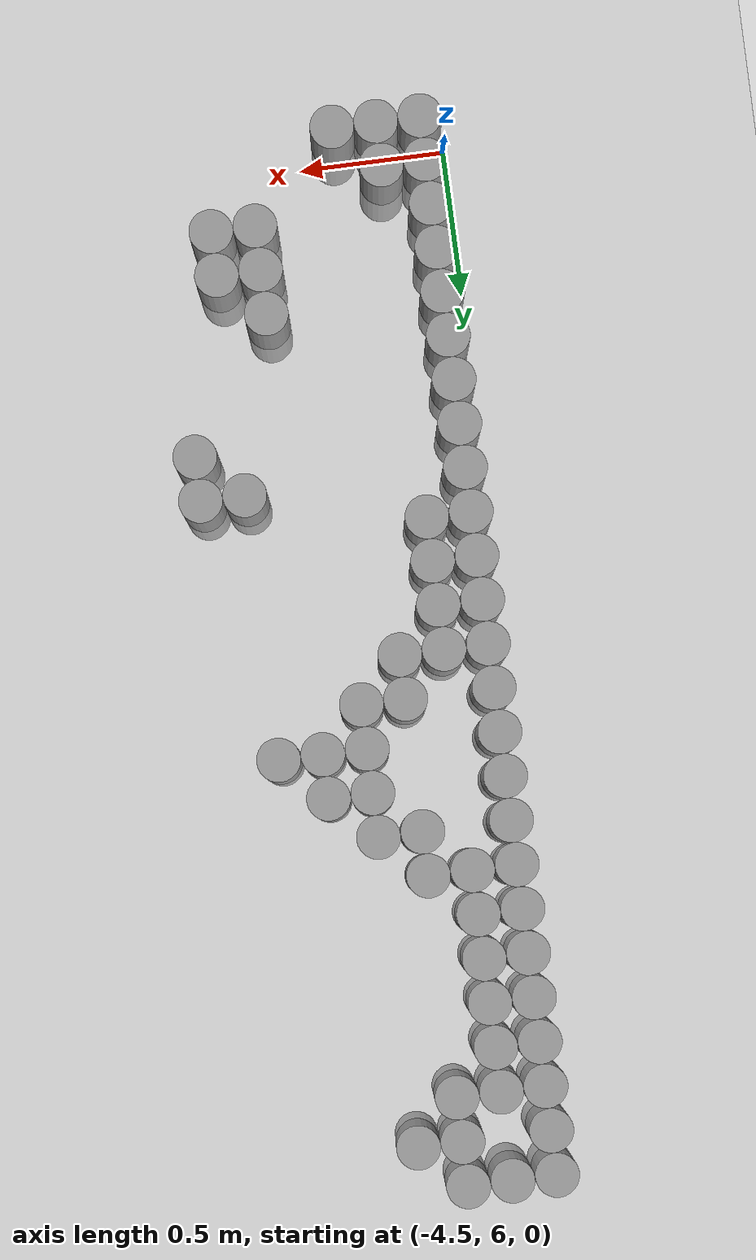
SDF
<sdf version="1.6">
 <world name="default">
  <model name="ground_plane">
   <static>1</static>
   <link name="link">
    <collision name="collision">
     <geometry><plane><normal>0 0 1</normal><size>100 100</size></plane></geometry>
     <surface><friction><ode><mu>100</mu><mu2>50</mu2></ode></friction></surface>
    </collision>
    <visual name="visual">
     <cast_shadows>0</cast_shadows>
     <geometry><plane><normal>0 0 1</normal><size>100 100</size></plane></geometry>
     <material>
      <script><uri>file://media/materials/scripts/gazebo.material</uri><name>Gazebo/Grey</name></script>
     </material>
    </visual>
   </link>
  </model>
  <model name="unit_cylinder_101">
   <pose>-4.425000 5.925000 0.000000 0.000000 0.000000 0.000000</pose>
   <link name="link">
    <inertial>
     <mass>1</mass>
     <inertia><ixx>0.145833</ixx><ixy>0</ixy><ixz>0</ixz><iyy>0.145833</iyy><iyz>0</iyz><izz>0.125</izz></inertia>
    </inertial>
    <collision name="collision">
     <geometry><cylinder><radius>0.075000</radius><length>1</length></cylinder></geometry>
    </collision>
    <visual name="visual">
     <geometry><cylinder><radius>0.075000</radius><length>1</length></cylinder></geometry>
     <material>
      <script><name>Gazebo/Grey</name><uri>file://media/materials/scripts/gazebo.material</uri></script>
     </material>
    </visual>
   </link>
  </model>
  <model name="unit_cylinder_102">
   <pose>-4.425000 6.075000 0.000000 0.000000 0.000000 0.000000</pose>
   <link name="link">
    <inertial>
     <mass>1</mass>
     <inertia><ixx>0.145833</ixx><ixy>0</ixy><ixz>0</ixz><iyy>0.145833</iyy><iyz>0</iyz><izz>0.125</izz></inertia>
    </inertial>
    <collision name="collision">
     <geometry><cylinder><radius>0.075000</radius><length>1</length></cylinder></geometry>
    </collision>
    <visual name="visual">
     <geometry><cylinder><radius>0.075000</radius><length>1</length></cylinder></geometry>
     <material>
      <script><name>Gazebo/Grey</name><uri>file://media/materials/scripts/gazebo.material</uri></script>
     </material>
    </visual>
   </link>
  </model>
  <model name="unit_cylinder_103">
   <pose>-4.425000 6.225000 0.000000 0.000000 0.000000 0.000000</pose>
   <link name="link">
    <inertial>
     <mass>1</mass>
     <inertia><ixx>0.145833</ixx><ixy>0</ixy><ixz>0</ixz><iyy>0.145833</iyy><iyz>0</iyz><izz>0.125</izz></inertia>
    </inertial>
    <collision name="collision">
     <geometry><cylinder><radius>0.075000</radius><length>1</length></cylinder></geometry>
    </collision>
    <visual name="visual">
     <geometry><cylinder><radius>0.075000</radius><length>1</length></cylinder></geometry>
     <material>
      <script><name>Gazebo/Grey</name><uri>file://media/materials/scripts/gazebo.material</uri></script>
     </material>
    </visual>
   </link>
  </model>
  <model name="unit_cylinder_104">
   <pose>-4.425000 6.375000 0.000000 0.000000 0.000000 0.000000</pose>
   <link name="link">
    <inertial>
     <mass>1</mass>
     <inertia><ixx>0.145833</ixx><ixy>0</ixy><ixz>0</ixz><iyy>0.145833</iyy><iyz>0</iyz><izz>0.125</izz></inertia>
    </inertial>
    <collision name="collision">
     <geometry><cylinder><radius>0.075000</radius><length>1</length></cylinder></geometry>
    </collision>
    <visual name="visual">
     <geometry><cylinder><radius>0.075000</radius><length>1</length></cylinder></geometry>
     <material>
      <script><name>Gazebo/Grey</name><uri>file://media/materials/scripts/gazebo.material</uri></script>
     </material>
    </visual>
   </link>
  </model>
  <model name="unit_cylinder_105">
   <pose>-4.425000 6.525000 0.000000 0.000000 0.000000 0.000000</pose>
   <link name="link">
    <inertial>
     <mass>1</mass>
     <inertia><ixx>0.145833</ixx><ixy>0</ixy><ixz>0</ixz><iyy>0.145833</iyy><iyz>0</iyz><izz>0.125</izz></inertia>
    </inertial>
    <collision name="collision">
     <geometry><cylinder><radius>0.075000</radius><length>1</length></cylinder></geometry>
    </collision>
    <visual name="visual">
     <geometry><cylinder><radius>0.075000</radius><length>1</length></cylinder></geometry>
     <material>
      <script><name>Gazebo/Grey</name><uri>file://media/materials/scripts/gazebo.material</uri></script>
     </material>
    </visual>
   </link>
  </model>
  <model name="unit_cylinder_106">
   <pose>-4.425000 6.675000 0.000000 0.000000 0.000000 0.000000</pose>
   <link name="link">
    <inertial>
     <mass>1</mass>
     <inertia><ixx>0.145833</ixx><ixy>0</ixy><ixz>0</ixz><iyy>0.145833</iyy><iyz>0</iyz><izz>0.125</izz></inertia>
    </inertial>
    <collision name="collision">
     <geometry><cylinder><radius>0.075000</radius><length>1</length></cylinder></geometry>
    </collision>
    <visual name="visual">
     <geometry><cylinder><radius>0.075000</radius><length>1</length></cylinder></geometry>
     <material>
      <script><name>Gazebo/Grey</name><uri>file://media/materials/scripts/gazebo.material</uri></script>
     </material>
    </visual>
   </link>
  </model>
  <model name="unit_cylinder_107">
   <pose>-4.425000 6.825000 0.000000 0.000000 0.000000 0.000000</pose>
   <link name="link">
    <inertial>
     <mass>1</mass>
     <inertia><ixx>0.145833</ixx><ixy>0</ixy><ixz>0</ixz><iyy>0.145833</iyy><iyz>0</iyz><izz>0.125</izz></inertia>
    </inertial>
    <collision name="collision">
     <geometry><cylinder><radius>0.075000</radius><length>1</length></cylinder></geometry>
    </collision>
    <visual name="visual">
     <geometry><cylinder><radius>0.075000</radius><length>1</length></cylinder></geometry>
     <material>
      <script><name>Gazebo/Grey</name><uri>file://media/materials/scripts/gazebo.material</uri></script>
     </material>
    </visual>
   </link>
  </model>
  <model name="unit_cylinder_108">
   <pose>-4.425000 6.975000 0.000000 0.000000 0.000000 0.000000</pose>
   <link name="link">
    <inertial>
     <mass>1</mass>
     <inertia><ixx>0.145833</ixx><ixy>0</ixy><ixz>0</ixz><iyy>0.145833</iyy><iyz>0</iyz><izz>0.125</izz></inertia>
    </inertial>
    <collision name="collision">
     <geometry><cylinder><radius>0.075000</radius><length>1</length></cylinder></geometry>
    </collision>
    <visual name="visual">
     <geometry><cylinder><radius>0.075000</radius><length>1</length></cylinder></geometry>
     <material>
      <script><name>Gazebo/Grey</name><uri>file://media/materials/scripts/gazebo.material</uri></script>
     </material>
    </visual>
   </link>
  </model>
  <model name="unit_cylinder_109">
   <pose>-4.425000 7.125000 0.000000 0.000000 0.000000 0.000000</pose>
   <link name="link">
    <inertial>
     <mass>1</mass>
     <inertia><ixx>0.145833</ixx><ixy>0</ixy><ixz>0</ixz><iyy>0.145833</iyy><iyz>0</iyz><izz>0.125</izz></inertia>
    </inertial>
    <collision name="collision">
     <geometry><cylinder><radius>0.075000</radius><length>1</length></cylinder></geometry>
    </collision>
    <visual name="visual">
     <geometry><cylinder><radius>0.075000</radius><length>1</length></cylinder></geometry>
     <material>
      <script><name>Gazebo/Grey</name><uri>file://media/materials/scripts/gazebo.material</uri></script>
     </material>
    </visual>
   </link>
  </model>
  <model name="unit_cylinder_110">
   <pose>-4.425000 7.275000 0.000000 0.000000 0.000000 0.000000</pose>
   <link name="link">
    <inertial>
     <mass>1</mass>
     <inertia><ixx>0.145833</ixx><ixy>0</ixy><ixz>0</ixz><iyy>0.145833</iyy><iyz>0</iyz><izz>0.125</izz></inertia>
    </inertial>
    <collision name="collision">
     <geometry><cylinder><radius>0.075000</radius><length>1</length></cylinder></geometry>
    </collision>
    <visual name="visual">
     <geometry><cylinder><radius>0.075000</radius><length>1</length></cylinder></geometry>
     <material>
      <script><name>Gazebo/Grey</name><uri>file://media/materials/scripts/gazebo.material</uri></script>
     </material>
    </visual>
   </link>
  </model>
  <model name="unit_cylinder_111">
   <pose>-4.425000 7.425000 0.000000 0.000000 0.000000 0.000000</pose>
   <link name="link">
    <inertial>
     <mass>1</mass>
     <inertia><ixx>0.145833</ixx><ixy>0</ixy><ixz>0</ixz><iyy>0.145833</iyy><iyz>0</iyz><izz>0.125</izz></inertia>
    </inertial>
    <collision name="collision">
     <geometry><cylinder><radius>0.075000</radius><length>1</length></cylinder></geometry>
    </collision>
    <visual name="visual">
     <geometry><cylinder><radius>0.075000</radius><length>1</length></cylinder></geometry>
     <material>
      <script><name>Gazebo/Grey</name><uri>file://media/materials/scripts/gazebo.material</uri></script>
     </material>
    </visual>
   </link>
  </model>
  <model name="unit_cylinder_112">
   <pose>-4.425000 7.575000 0.000000 0.000000 0.000000 0.000000</pose>
   <link name="link">
    <inertial>
     <mass>1</mass>
     <inertia><ixx>0.145833</ixx><ixy>0</ixy><ixz>0</ixz><iyy>0.145833</iyy><iyz>0</iyz><izz>0.125</izz></inertia>
    </inertial>
    <collision name="collision">
     <geometry><cylinder><radius>0.075000</radius><length>1</length></cylinder></geometry>
    </collision>
    <visual name="visual">
     <geometry><cylinder><radius>0.075000</radius><length>1</length></cylinder></geometry>
     <material>
      <script><name>Gazebo/Grey</name><uri>file://media/materials/scripts/gazebo.material</uri></script>
     </material>
    </visual>
   </link>
  </model>
  <model name="unit_cylinder_113">
   <pose>-4.425000 7.725000 0.000000 0.000000 0.000000 0.000000</pose>
   <link name="link">
    <inertial>
     <mass>1</mass>
     <inertia><ixx>0.145833</ixx><ixy>0</ixy><ixz>0</ixz><iyy>0.145833</iyy><iyz>0</iyz><izz>0.125</izz></inertia>
    </inertial>
    <collision name="collision">
     <geometry><cylinder><radius>0.075000</radius><length>1</length></cylinder></geometry>
    </collision>
    <visual name="visual">
     <geometry><cylinder><radius>0.075000</radius><length>1</length></cylinder></geometry>
     <material>
      <script><name>Gazebo/Grey</name><uri>file://media/materials/scripts/gazebo.material</uri></script>
     </material>
    </visual>
   </link>
  </model>
  <model name="unit_cylinder_114">
   <pose>-4.425000 7.875000 0.000000 0.000000 0.000000 0.000000</pose>
   <link name="link">
    <inertial>
     <mass>1</mass>
     <inertia><ixx>0.145833</ixx><ixy>0</ixy><ixz>0</ixz><iyy>0.145833</iyy><iyz>0</iyz><izz>0.125</izz></inertia>
    </inertial>
    <collision name="collision">
     <geometry><cylinder><radius>0.075000</radius><length>1</length></cylinder></geometry>
    </collision>
    <visual name="visual">
     <geometry><cylinder><radius>0.075000</radius><length>1</length></cylinder></geometry>
     <material>
      <script><name>Gazebo/Grey</name><uri>file://media/materials/scripts/gazebo.material</uri></script>
     </material>
    </visual>
   </link>
  </model>
  <model name="unit_cylinder_115">
   <pose>-4.425000 8.025000 0.000000 0.000000 0.000000 0.000000</pose>
   <link name="link">
    <inertial>
     <mass>1</mass>
     <inertia><ixx>0.145833</ixx><ixy>0</ixy><ixz>0</ixz><iyy>0.145833</iyy><iyz>0</iyz><izz>0.125</izz></inertia>
    </inertial>
    <collision name="collision">
     <geometry><cylinder><radius>0.075000</radius><length>1</length></cylinder></geometry>
    </collision>
    <visual name="visual">
     <geometry><cylinder><radius>0.075000</radius><length>1</length></cylinder></geometry>
     <material>
      <script><name>Gazebo/Grey</name><uri>file://media/materials/scripts/gazebo.material</uri></script>
     </material>
    </visual>
   </link>
  </model>
  <model name="unit_cylinder_116">
   <pose>-4.425000 8.175000 0.000000 0.000000 0.000000 0.000000</pose>
   <link name="link">
    <inertial>
     <mass>1</mass>
     <inertia><ixx>0.145833</ixx><ixy>0</ixy><ixz>0</ixz><iyy>0.145833</iyy><iyz>0</iyz><izz>0.125</izz></inertia>
    </inertial>
    <collision name="collision">
     <geometry><cylinder><radius>0.075000</radius><length>1</length></cylinder></geometry>
    </collision>
    <visual name="visual">
     <geometry><cylinder><radius>0.075000</radius><length>1</length></cylinder></geometry>
     <material>
      <script><name>Gazebo/Grey</name><uri>file://media/materials/scripts/gazebo.material</uri></script>
     </material>
    </visual>
   </link>
  </model>
  <model name="unit_cylinder_117">
   <pose>-4.425000 8.325000 0.000000 0.000000 0.000000 0.000000</pose>
   <link name="link">
    <inertial>
     <mass>1</mass>
     <inertia><ixx>0.145833</ixx><ixy>0</ixy><ixz>0</ixz><iyy>0.145833</iyy><iyz>0</iyz><izz>0.125</izz></inertia>
    </inertial>
    <collision name="collision">
     <geometry><cylinder><radius>0.075000</radius><length>1</length></cylinder></geometry>
    </collision>
    <visual name="visual">
     <geometry><cylinder><radius>0.075000</radius><length>1</length></cylinder></geometry>
     <material>
      <script><name>Gazebo/Grey</name><uri>file://media/materials/scripts/gazebo.material</uri></script>
     </material>
    </visual>
   </link>
  </model>
  <model name="unit_cylinder_118">
   <pose>-4.425000 8.475000 0.000000 0.000000 0.000000 0.000000</pose>
   <link name="link">
    <inertial>
     <mass>1</mass>
     <inertia><ixx>0.145833</ixx><ixy>0</ixy><ixz>0</ixz><iyy>0.145833</iyy><iyz>0</iyz><izz>0.125</izz></inertia>
    </inertial>
    <collision name="collision">
     <geometry><cylinder><radius>0.075000</radius><length>1</length></cylinder></geometry>
    </collision>
    <visual name="visual">
     <geometry><cylinder><radius>0.075000</radius><length>1</length></cylinder></geometry>
     <material>
      <script><name>Gazebo/Grey</name><uri>file://media/materials/scripts/gazebo.material</uri></script>
     </material>
    </visual>
   </link>
  </model>
  <model name="unit_cylinder_119">
   <pose>-4.425000 8.625000 0.000000 0.000000 0.000000 0.000000</pose>
   <link name="link">
    <inertial>
     <mass>1</mass>
     <inertia><ixx>0.145833</ixx><ixy>0</ixy><ixz>0</ixz><iyy>0.145833</iyy><iyz>0</iyz><izz>0.125</izz></inertia>
    </inertial>
    <collision name="collision">
     <geometry><cylinder><radius>0.075000</radius><length>1</length></cylinder></geometry>
    </collision>
    <visual name="visual">
     <geometry><cylinder><radius>0.075000</radius><length>1</length></cylinder></geometry>
     <material>
      <script><name>Gazebo/Grey</name><uri>file://media/materials/scripts/gazebo.material</uri></script>
     </material>
    </visual>
   </link>
  </model>
  <model name="unit_cylinder_120">
   <pose>-4.425000 8.775000 0.000000 0.000000 0.000000 0.000000</pose>
   <link name="link">
    <inertial>
     <mass>1</mass>
     <inertia><ixx>0.145833</ixx><ixy>0</ixy><ixz>0</ixz><iyy>0.145833</iyy><iyz>0</iyz><izz>0.125</izz></inertia>
    </inertial>
    <collision name="collision">
     <geometry><cylinder><radius>0.075000</radius><length>1</length></cylinder></geometry>
    </collision>
    <visual name="visual">
     <geometry><cylinder><radius>0.075000</radius><length>1</length></cylinder></geometry>
     <material>
      <script><name>Gazebo/Grey</name><uri>file://media/materials/scripts/gazebo.material</uri></script>
     </material>
    </visual>
   </link>
  </model>
  <model name="unit_cylinder_121">
   <pose>-4.425000 8.925000 0.000000 0.000000 0.000000 0.000000</pose>
   <link name="link">
    <inertial>
     <mass>1</mass>
     <inertia><ixx>0.145833</ixx><ixy>0</ixy><ixz>0</ixz><iyy>0.145833</iyy><iyz>0</iyz><izz>0.125</izz></inertia>
    </inertial>
    <collision name="collision">
     <geometry><cylinder><radius>0.075000</radius><length>1</length></cylinder></geometry>
    </collision>
    <visual name="visual">
     <geometry><cylinder><radius>0.075000</radius><length>1</length></cylinder></geometry>
     <material>
      <script><name>Gazebo/Grey</name><uri>file://media/materials/scripts/gazebo.material</uri></script>
     </material>
    </visual>
   </link>
  </model>
  <model name="unit_cylinder_122">
   <pose>-4.425000 9.075000 0.000000 0.000000 0.000000 0.000000</pose>
   <link name="link">
    <inertial>
     <mass>1</mass>
     <inertia><ixx>0.145833</ixx><ixy>0</ixy><ixz>0</ixz><iyy>0.145833</iyy><iyz>0</iyz><izz>0.125</izz></inertia>
    </inertial>
    <collision name="collision">
     <geometry><cylinder><radius>0.075000</radius><length>1</length></cylinder></geometry>
    </collision>
    <visual name="visual">
     <geometry><cylinder><radius>0.075000</radius><length>1</length></cylinder></geometry>
     <material>
      <script><name>Gazebo/Grey</name><uri>file://media/materials/scripts/gazebo.material</uri></script>
     </material>
    </visual>
   </link>
  </model>
  <model name="unit_cylinder_123">
   <pose>-4.425000 9.225000 0.000000 0.000000 0.000000 0.000000</pose>
   <link name="link">
    <inertial>
     <mass>1</mass>
     <inertia><ixx>0.145833</ixx><ixy>0</ixy><ixz>0</ixz><iyy>0.145833</iyy><iyz>0</iyz><izz>0.125</izz></inertia>
    </inertial>
    <collision name="collision">
     <geometry><cylinder><radius>0.075000</radius><length>1</length></cylinder></geometry>
    </collision>
    <visual name="visual">
     <geometry><cylinder><radius>0.075000</radius><length>1</length></cylinder></geometry>
     <material>
      <script><name>Gazebo/Grey</name><uri>file://media/materials/scripts/gazebo.material</uri></script>
     </material>
    </visual>
   </link>
  </model>
  <model name="unit_cylinder_124">
   <pose>-4.425000 9.375000 0.000000 0.000000 0.000000 0.000000</pose>
   <link name="link">
    <inertial>
     <mass>1</mass>
     <inertia><ixx>0.145833</ixx><ixy>0</ixy><ixz>0</ixz><iyy>0.145833</iyy><iyz>0</iyz><izz>0.125</izz></inertia>
    </inertial>
    <collision name="collision">
     <geometry><cylinder><radius>0.075000</radius><length>1</length></cylinder></geometry>
    </collision>
    <visual name="visual">
     <geometry><cylinder><radius>0.075000</radius><length>1</length></cylinder></geometry>
     <material>
      <script><name>Gazebo/Grey</name><uri>file://media/materials/scripts/gazebo.material</uri></script>
     </material>
    </visual>
   </link>
  </model>
  <model name="unit_cylinder_125">
   <pose>-4.425000 9.525000 0.000000 0.000000 0.000000 0.000000</pose>
   <link name="link">
    <inertial>
     <mass>1</mass>
     <inertia><ixx>0.145833</ixx><ixy>0</ixy><ixz>0</ixz><iyy>0.145833</iyy><iyz>0</iyz><izz>0.125</izz></inertia>
    </inertial>
    <collision name="collision">
     <geometry><cylinder><radius>0.075000</radius><length>1</length></cylinder></geometry>
    </collision>
    <visual name="visual">
     <geometry><cylinder><radius>0.075000</radius><length>1</length></cylinder></geometry>
     <material>
      <script><name>Gazebo/Grey</name><uri>file://media/materials/scripts/gazebo.material</uri></script>
     </material>
    </visual>
   </link>
  </model>
  <model name="unit_cylinder_130">
   <pose>-4.275000 5.925000 0.000000 0.000000 0.000000 0.000000</pose>
   <link name="link">
    <inertial>
     <mass>1</mass>
     <inertia><ixx>0.145833</ixx><ixy>0</ixy><ixz>0</ixz><iyy>0.145833</iyy><iyz>0</iyz><izz>0.125</izz></inertia>
    </inertial>
    <collision name="collision">
     <geometry><cylinder><radius>0.075000</radius><length>1</length></cylinder></geometry>
    </collision>
    <visual name="visual">
     <geometry><cylinder><radius>0.075000</radius><length>1</length></cylinder></geometry>
     <material>
      <script><name>Gazebo/Grey</name><uri>file://media/materials/scripts/gazebo.material</uri></script>
     </material>
    </visual>
   </link>
  </model>
  <model name="unit_cylinder_131">
   <pose>-4.275000 6.075000 0.000000 0.000000 0.000000 0.000000</pose>
   <link name="link">
    <inertial>
     <mass>1</mass>
     <inertia><ixx>0.145833</ixx><ixy>0</ixy><ixz>0</ixz><iyy>0.145833</iyy><iyz>0</iyz><izz>0.125</izz></inertia>
    </inertial>
    <collision name="collision">
     <geometry><cylinder><radius>0.075000</radius><length>1</length></cylinder></geometry>
    </collision>
    <visual name="visual">
     <geometry><cylinder><radius>0.075000</radius><length>1</length></cylinder></geometry>
     <material>
      <script><name>Gazebo/Grey</name><uri>file://media/materials/scripts/gazebo.material</uri></script>
     </material>
    </visual>
   </link>
  </model>
  <model name="unit_cylinder_132">
   <pose>-4.275000 7.275000 0.000000 0.000000 0.000000 0.000000</pose>
   <link name="link">
    <inertial>
     <mass>1</mass>
     <inertia><ixx>0.145833</ixx><ixy>0</ixy><ixz>0</ixz><iyy>0.145833</iyy><iyz>0</iyz><izz>0.125</izz></inertia>
    </inertial>
    <collision name="collision">
     <geometry><cylinder><radius>0.075000</radius><length>1</length></cylinder></geometry>
    </collision>
    <visual name="visual">
     <geometry><cylinder><radius>0.075000</radius><length>1</length></cylinder></geometry>
     <material>
      <script><name>Gazebo/Grey</name><uri>file://media/materials/scripts/gazebo.material</uri></script>
     </material>
    </visual>
   </link>
  </model>
  <model name="unit_cylinder_133">
   <pose>-4.275000 7.425000 0.000000 0.000000 0.000000 0.000000</pose>
   <link name="link">
    <inertial>
     <mass>1</mass>
     <inertia><ixx>0.145833</ixx><ixy>0</ixy><ixz>0</ixz><iyy>0.145833</iyy><iyz>0</iyz><izz>0.125</izz></inertia>
    </inertial>
    <collision name="collision">
     <geometry><cylinder><radius>0.075000</radius><length>1</length></cylinder></geometry>
    </collision>
    <visual name="visual">
     <geometry><cylinder><radius>0.075000</radius><length>1</length></cylinder></geometry>
     <material>
      <script><name>Gazebo/Grey</name><uri>file://media/materials/scripts/gazebo.material</uri></script>
     </material>
    </visual>
   </link>
  </model>
  <model name="unit_cylinder_134">
   <pose>-4.275000 7.575000 0.000000 0.000000 0.000000 0.000000</pose>
   <link name="link">
    <inertial>
     <mass>1</mass>
     <inertia><ixx>0.145833</ixx><ixy>0</ixy><ixz>0</ixz><iyy>0.145833</iyy><iyz>0</iyz><izz>0.125</izz></inertia>
    </inertial>
    <collision name="collision">
     <geometry><cylinder><radius>0.075000</radius><length>1</length></cylinder></geometry>
    </collision>
    <visual name="visual">
     <geometry><cylinder><radius>0.075000</radius><length>1</length></cylinder></geometry>
     <material>
      <script><name>Gazebo/Grey</name><uri>file://media/materials/scripts/gazebo.material</uri></script>
     </material>
    </visual>
   </link>
  </model>
  <model name="unit_cylinder_135">
   <pose>-4.275000 7.725000 0.000000 0.000000 0.000000 0.000000</pose>
   <link name="link">
    <inertial>
     <mass>1</mass>
     <inertia><ixx>0.145833</ixx><ixy>0</ixy><ixz>0</ixz><iyy>0.145833</iyy><iyz>0</iyz><izz>0.125</izz></inertia>
    </inertial>
    <collision name="collision">
     <geometry><cylinder><radius>0.075000</radius><length>1</length></cylinder></geometry>
    </collision>
    <visual name="visual">
     <geometry><cylinder><radius>0.075000</radius><length>1</length></cylinder></geometry>
     <material>
      <script><name>Gazebo/Grey</name><uri>file://media/materials/scripts/gazebo.material</uri></script>
     </material>
    </visual>
   </link>
  </model>
  <model name="unit_cylinder_136">
   <pose>-4.275000 8.475000 0.000000 0.000000 0.000000 0.000000</pose>
   <link name="link">
    <inertial>
     <mass>1</mass>
     <inertia><ixx>0.145833</ixx><ixy>0</ixy><ixz>0</ixz><iyy>0.145833</iyy><iyz>0</iyz><izz>0.125</izz></inertia>
    </inertial>
    <collision name="collision">
     <geometry><cylinder><radius>0.075000</radius><length>1</length></cylinder></geometry>
    </collision>
    <visual name="visual">
     <geometry><cylinder><radius>0.075000</radius><length>1</length></cylinder></geometry>
     <material>
      <script><name>Gazebo/Grey</name><uri>file://media/materials/scripts/gazebo.material</uri></script>
     </material>
    </visual>
   </link>
  </model>
  <model name="unit_cylinder_137">
   <pose>-4.275000 8.625000 0.000000 0.000000 0.000000 0.000000</pose>
   <link name="link">
    <inertial>
     <mass>1</mass>
     <inertia><ixx>0.145833</ixx><ixy>0</ixy><ixz>0</ixz><iyy>0.145833</iyy><iyz>0</iyz><izz>0.125</izz></inertia>
    </inertial>
    <collision name="collision">
     <geometry><cylinder><radius>0.075000</radius><length>1</length></cylinder></geometry>
    </collision>
    <visual name="visual">
     <geometry><cylinder><radius>0.075000</radius><length>1</length></cylinder></geometry>
     <material>
      <script><name>Gazebo/Grey</name><uri>file://media/materials/scripts/gazebo.material</uri></script>
     </material>
    </visual>
   </link>
  </model>
  <model name="unit_cylinder_138">
   <pose>-4.275000 8.775000 0.000000 0.000000 0.000000 0.000000</pose>
   <link name="link">
    <inertial>
     <mass>1</mass>
     <inertia><ixx>0.145833</ixx><ixy>0</ixy><ixz>0</ixz><iyy>0.145833</iyy><iyz>0</iyz><izz>0.125</izz></inertia>
    </inertial>
    <collision name="collision">
     <geometry><cylinder><radius>0.075000</radius><length>1</length></cylinder></geometry>
    </collision>
    <visual name="visual">
     <geometry><cylinder><radius>0.075000</radius><length>1</length></cylinder></geometry>
     <material>
      <script><name>Gazebo/Grey</name><uri>file://media/materials/scripts/gazebo.material</uri></script>
     </material>
    </visual>
   </link>
  </model>
  <model name="unit_cylinder_139">
   <pose>-4.275000 8.925000 0.000000 0.000000 0.000000 0.000000</pose>
   <link name="link">
    <inertial>
     <mass>1</mass>
     <inertia><ixx>0.145833</ixx><ixy>0</ixy><ixz>0</ixz><iyy>0.145833</iyy><iyz>0</iyz><izz>0.125</izz></inertia>
    </inertial>
    <collision name="collision">
     <geometry><cylinder><radius>0.075000</radius><length>1</length></cylinder></geometry>
    </collision>
    <visual name="visual">
     <geometry><cylinder><radius>0.075000</radius><length>1</length></cylinder></geometry>
     <material>
      <script><name>Gazebo/Grey</name><uri>file://media/materials/scripts/gazebo.material</uri></script>
     </material>
    </visual>
   </link>
  </model>
  <model name="unit_cylinder_140">
   <pose>-4.275000 9.075000 0.000000 0.000000 0.000000 0.000000</pose>
   <link name="link">
    <inertial>
     <mass>1</mass>
     <inertia><ixx>0.145833</ixx><ixy>0</ixy><ixz>0</ixz><iyy>0.145833</iyy><iyz>0</iyz><izz>0.125</izz></inertia>
    </inertial>
    <collision name="collision">
     <geometry><cylinder><radius>0.075000</radius><length>1</length></cylinder></geometry>
    </collision>
    <visual name="visual">
     <geometry><cylinder><radius>0.075000</radius><length>1</length></cylinder></geometry>
     <material>
      <script><name>Gazebo/Grey</name><uri>file://media/materials/scripts/gazebo.material</uri></script>
     </material>
    </visual>
   </link>
  </model>
  <model name="unit_cylinder_141">
   <pose>-4.275000 9.225000 0.000000 0.000000 0.000000 0.000000</pose>
   <link name="link">
    <inertial>
     <mass>1</mass>
     <inertia><ixx>0.145833</ixx><ixy>0</ixy><ixz>0</ixz><iyy>0.145833</iyy><iyz>0</iyz><izz>0.125</izz></inertia>
    </inertial>
    <collision name="collision">
     <geometry><cylinder><radius>0.075000</radius><length>1</length></cylinder></geometry>
    </collision>
    <visual name="visual">
     <geometry><cylinder><radius>0.075000</radius><length>1</length></cylinder></geometry>
     <material>
      <script><name>Gazebo/Grey</name><uri>file://media/materials/scripts/gazebo.material</uri></script>
     </material>
    </visual>
   </link>
  </model>
  <model name="unit_cylinder_142">
   <pose>-4.275000 9.525000 0.000000 0.000000 0.000000 0.000000</pose>
   <link name="link">
    <inertial>
     <mass>1</mass>
     <inertia><ixx>0.145833</ixx><ixy>0</ixy><ixz>0</ixz><iyy>0.145833</iyy><iyz>0</iyz><izz>0.125</izz></inertia>
    </inertial>
    <collision name="collision">
     <geometry><cylinder><radius>0.075000</radius><length>1</length></cylinder></geometry>
    </collision>
    <visual name="visual">
     <geometry><cylinder><radius>0.075000</radius><length>1</length></cylinder></geometry>
     <material>
      <script><name>Gazebo/Grey</name><uri>file://media/materials/scripts/gazebo.material</uri></script>
     </material>
    </visual>
   </link>
  </model>
  <model name="unit_cylinder_144">
   <pose>-4.125000 5.925000 0.000000 0.000000 0.000000 0.000000</pose>
   <link name="link">
    <inertial>
     <mass>1</mass>
     <inertia><ixx>0.145833</ixx><ixy>0</ixy><ixz>0</ixz><iyy>0.145833</iyy><iyz>0</iyz><izz>0.125</izz></inertia>
    </inertial>
    <collision name="collision">
     <geometry><cylinder><radius>0.075000</radius><length>1</length></cylinder></geometry>
    </collision>
    <visual name="visual">
     <geometry><cylinder><radius>0.075000</radius><length>1</length></cylinder></geometry>
     <material>
      <script><name>Gazebo/Grey</name><uri>file://media/materials/scripts/gazebo.material</uri></script>
     </material>
    </visual>
   </link>
  </model>
  <model name="unit_cylinder_145">
   <pose>-4.125000 7.725000 0.000000 0.000000 0.000000 0.000000</pose>
   <link name="link">
    <inertial>
     <mass>1</mass>
     <inertia><ixx>0.145833</ixx><ixy>0</ixy><ixz>0</ixz><iyy>0.145833</iyy><iyz>0</iyz><izz>0.125</izz></inertia>
    </inertial>
    <collision name="collision">
     <geometry><cylinder><radius>0.075000</radius><length>1</length></cylinder></geometry>
    </collision>
    <visual name="visual">
     <geometry><cylinder><radius>0.075000</radius><length>1</length></cylinder></geometry>
     <material>
      <script><name>Gazebo/Grey</name><uri>file://media/materials/scripts/gazebo.material</uri></script>
     </material>
    </visual>
   </link>
  </model>
  <model name="unit_cylinder_146">
   <pose>-4.125000 7.875000 0.000000 0.000000 0.000000 0.000000</pose>
   <link name="link">
    <inertial>
     <mass>1</mass>
     <inertia><ixx>0.145833</ixx><ixy>0</ixy><ixz>0</ixz><iyy>0.145833</iyy><iyz>0</iyz><izz>0.125</izz></inertia>
    </inertial>
    <collision name="collision">
     <geometry><cylinder><radius>0.075000</radius><length>1</length></cylinder></geometry>
    </collision>
    <visual name="visual">
     <geometry><cylinder><radius>0.075000</radius><length>1</length></cylinder></geometry>
     <material>
      <script><name>Gazebo/Grey</name><uri>file://media/materials/scripts/gazebo.material</uri></script>
     </material>
    </visual>
   </link>
  </model>
  <model name="unit_cylinder_147">
   <pose>-4.125000 8.325000 0.000000 0.000000 0.000000 0.000000</pose>
   <link name="link">
    <inertial>
     <mass>1</mass>
     <inertia><ixx>0.145833</ixx><ixy>0</ixy><ixz>0</ixz><iyy>0.145833</iyy><iyz>0</iyz><izz>0.125</izz></inertia>
    </inertial>
    <collision name="collision">
     <geometry><cylinder><radius>0.075000</radius><length>1</length></cylinder></geometry>
    </collision>
    <visual name="visual">
     <geometry><cylinder><radius>0.075000</radius><length>1</length></cylinder></geometry>
     <material>
      <script><name>Gazebo/Grey</name><uri>file://media/materials/scripts/gazebo.material</uri></script>
     </material>
    </visual>
   </link>
  </model>
  <model name="unit_cylinder_148">
   <pose>-4.125000 8.475000 0.000000 0.000000 0.000000 0.000000</pose>
   <link name="link">
    <inertial>
     <mass>1</mass>
     <inertia><ixx>0.145833</ixx><ixy>0</ixy><ixz>0</ixz><iyy>0.145833</iyy><iyz>0</iyz><izz>0.125</izz></inertia>
    </inertial>
    <collision name="collision">
     <geometry><cylinder><radius>0.075000</radius><length>1</length></cylinder></geometry>
    </collision>
    <visual name="visual">
     <geometry><cylinder><radius>0.075000</radius><length>1</length></cylinder></geometry>
     <material>
      <script><name>Gazebo/Grey</name><uri>file://media/materials/scripts/gazebo.material</uri></script>
     </material>
    </visual>
   </link>
  </model>
  <model name="unit_cylinder_149">
   <pose>-4.125000 9.225000 0.000000 0.000000 0.000000 0.000000</pose>
   <link name="link">
    <inertial>
     <mass>1</mass>
     <inertia><ixx>0.145833</ixx><ixy>0</ixy><ixz>0</ixz><iyy>0.145833</iyy><iyz>0</iyz><izz>0.125</izz></inertia>
    </inertial>
    <collision name="collision">
     <geometry><cylinder><radius>0.075000</radius><length>1</length></cylinder></geometry>
    </collision>
    <visual name="visual">
     <geometry><cylinder><radius>0.075000</radius><length>1</length></cylinder></geometry>
     <material>
      <script><name>Gazebo/Grey</name><uri>file://media/materials/scripts/gazebo.material</uri></script>
     </material>
    </visual>
   </link>
  </model>
  <model name="unit_cylinder_150">
   <pose>-4.125000 9.375000 0.000000 0.000000 0.000000 0.000000</pose>
   <link name="link">
    <inertial>
     <mass>1</mass>
     <inertia><ixx>0.145833</ixx><ixy>0</ixy><ixz>0</ixz><iyy>0.145833</iyy><iyz>0</iyz><izz>0.125</izz></inertia>
    </inertial>
    <collision name="collision">
     <geometry><cylinder><radius>0.075000</radius><length>1</length></cylinder></geometry>
    </collision>
    <visual name="visual">
     <geometry><cylinder><radius>0.075000</radius><length>1</length></cylinder></geometry>
     <material>
      <script><name>Gazebo/Grey</name><uri>file://media/materials/scripts/gazebo.material</uri></script>
     </material>
    </visual>
   </link>
  </model>
  <model name="unit_cylinder_151">
   <pose>-4.125000 9.525000 0.000000 0.000000 0.000000 0.000000</pose>
   <link name="link">
    <inertial>
     <mass>1</mass>
     <inertia><ixx>0.145833</ixx><ixy>0</ixy><ixz>0</ixz><iyy>0.145833</iyy><iyz>0</iyz><izz>0.125</izz></inertia>
    </inertial>
    <collision name="collision">
     <geometry><cylinder><radius>0.075000</radius><length>1</length></cylinder></geometry>
    </collision>
    <visual name="visual">
     <geometry><cylinder><radius>0.075000</radius><length>1</length></cylinder></geometry>
     <material>
      <script><name>Gazebo/Grey</name><uri>file://media/materials/scripts/gazebo.material</uri></script>
     </material>
    </visual>
   </link>
  </model>
  <model name="unit_cylinder_152">
   <pose>-3.975000 7.875000 0.000000 0.000000 0.000000 0.000000</pose>
   <link name="link">
    <inertial>
     <mass>1</mass>
     <inertia><ixx>0.145833</ixx><ixy>0</ixy><ixz>0</ixz><iyy>0.145833</iyy><iyz>0</iyz><izz>0.125</izz></inertia>
    </inertial>
    <collision name="collision">
     <geometry><cylinder><radius>0.075000</radius><length>1</length></cylinder></geometry>
    </collision>
    <visual name="visual">
     <geometry><cylinder><radius>0.075000</radius><length>1</length></cylinder></geometry>
     <material>
      <script><name>Gazebo/Grey</name><uri>file://media/materials/scripts/gazebo.material</uri></script>
     </material>
    </visual>
   </link>
  </model>
  <model name="unit_cylinder_153">
   <pose>-3.975000 8.025000 0.000000 0.000000 0.000000 0.000000</pose>
   <link name="link">
    <inertial>
     <mass>1</mass>
     <inertia><ixx>0.145833</ixx><ixy>0</ixy><ixz>0</ixz><iyy>0.145833</iyy><iyz>0</iyz><izz>0.125</izz></inertia>
    </inertial>
    <collision name="collision">
     <geometry><cylinder><radius>0.075000</radius><length>1</length></cylinder></geometry>
    </collision>
    <visual name="visual">
     <geometry><cylinder><radius>0.075000</radius><length>1</length></cylinder></geometry>
     <material>
      <script><name>Gazebo/Grey</name><uri>file://media/materials/scripts/gazebo.material</uri></script>
     </material>
    </visual>
   </link>
  </model>
  <model name="unit_cylinder_154">
   <pose>-3.975000 8.175000 0.000000 0.000000 0.000000 0.000000</pose>
   <link name="link">
    <inertial>
     <mass>1</mass>
     <inertia><ixx>0.145833</ixx><ixy>0</ixy><ixz>0</ixz><iyy>0.145833</iyy><iyz>0</iyz><izz>0.125</izz></inertia>
    </inertial>
    <collision name="collision">
     <geometry><cylinder><radius>0.075000</radius><length>1</length></cylinder></geometry>
    </collision>
    <visual name="visual">
     <geometry><cylinder><radius>0.075000</radius><length>1</length></cylinder></geometry>
     <material>
      <script><name>Gazebo/Grey</name><uri>file://media/materials/scripts/gazebo.material</uri></script>
     </material>
    </visual>
   </link>
  </model>
  <model name="unit_cylinder_155">
   <pose>-3.975000 8.325000 0.000000 0.000000 0.000000 0.000000</pose>
   <link name="link">
    <inertial>
     <mass>1</mass>
     <inertia><ixx>0.145833</ixx><ixy>0</ixy><ixz>0</ixz><iyy>0.145833</iyy><iyz>0</iyz><izz>0.125</izz></inertia>
    </inertial>
    <collision name="collision">
     <geometry><cylinder><radius>0.075000</radius><length>1</length></cylinder></geometry>
    </collision>
    <visual name="visual">
     <geometry><cylinder><radius>0.075000</radius><length>1</length></cylinder></geometry>
     <material>
      <script><name>Gazebo/Grey</name><uri>file://media/materials/scripts/gazebo.material</uri></script>
     </material>
    </visual>
   </link>
  </model>
  <model name="unit_cylinder_156">
   <pose>-3.975000 9.375000 0.000000 0.000000 0.000000 0.000000</pose>
   <link name="link">
    <inertial>
     <mass>1</mass>
     <inertia><ixx>0.145833</ixx><ixy>0</ixy><ixz>0</ixz><iyy>0.145833</iyy><iyz>0</iyz><izz>0.125</izz></inertia>
    </inertial>
    <collision name="collision">
     <geometry><cylinder><radius>0.075000</radius><length>1</length></cylinder></geometry>
    </collision>
    <visual name="visual">
     <geometry><cylinder><radius>0.075000</radius><length>1</length></cylinder></geometry>
     <material>
      <script><name>Gazebo/Grey</name><uri>file://media/materials/scripts/gazebo.material</uri></script>
     </material>
    </visual>
   </link>
  </model>
  <model name="unit_cylinder_157">
   <pose>-3.825000 6.225000 0.000000 0.000000 0.000000 0.000000</pose>
   <link name="link">
    <inertial>
     <mass>1</mass>
     <inertia><ixx>0.145833</ixx><ixy>0</ixy><ixz>0</ixz><iyy>0.145833</iyy><iyz>0</iyz><izz>0.125</izz></inertia>
    </inertial>
    <collision name="collision">
     <geometry><cylinder><radius>0.075000</radius><length>1</length></cylinder></geometry>
    </collision>
    <visual name="visual">
     <geometry><cylinder><radius>0.075000</radius><length>1</length></cylinder></geometry>
     <material>
      <script><name>Gazebo/Grey</name><uri>file://media/materials/scripts/gazebo.material</uri></script>
     </material>
    </visual>
   </link>
  </model>
  <model name="unit_cylinder_158">
   <pose>-3.825000 6.375000 0.000000 0.000000 0.000000 0.000000</pose>
   <link name="link">
    <inertial>
     <mass>1</mass>
     <inertia><ixx>0.145833</ixx><ixy>0</ixy><ixz>0</ixz><iyy>0.145833</iyy><iyz>0</iyz><izz>0.125</izz></inertia>
    </inertial>
    <collision name="collision">
     <geometry><cylinder><radius>0.075000</radius><length>1</length></cylinder></geometry>
    </collision>
    <visual name="visual">
     <geometry><cylinder><radius>0.075000</radius><length>1</length></cylinder></geometry>
     <material>
      <script><name>Gazebo/Grey</name><uri>file://media/materials/scripts/gazebo.material</uri></script>
     </material>
    </visual>
   </link>
  </model>
  <model name="unit_cylinder_159">
   <pose>-3.825000 6.525000 0.000000 0.000000 0.000000 0.000000</pose>
   <link name="link">
    <inertial>
     <mass>1</mass>
     <inertia><ixx>0.145833</ixx><ixy>0</ixy><ixz>0</ixz><iyy>0.145833</iyy><iyz>0</iyz><izz>0.125</izz></inertia>
    </inertial>
    <collision name="collision">
     <geometry><cylinder><radius>0.075000</radius><length>1</length></cylinder></geometry>
    </collision>
    <visual name="visual">
     <geometry><cylinder><radius>0.075000</radius><length>1</length></cylinder></geometry>
     <material>
      <script><name>Gazebo/Grey</name><uri>file://media/materials/scripts/gazebo.material</uri></script>
     </material>
    </visual>
   </link>
  </model>
  <model name="unit_cylinder_160">
   <pose>-3.825000 8.025000 0.000000 0.000000 0.000000 0.000000</pose>
   <link name="link">
    <inertial>
     <mass>1</mass>
     <inertia><ixx>0.145833</ixx><ixy>0</ixy><ixz>0</ixz><iyy>0.145833</iyy><iyz>0</iyz><izz>0.125</izz></inertia>
    </inertial>
    <collision name="collision">
     <geometry><cylinder><radius>0.075000</radius><length>1</length></cylinder></geometry>
    </collision>
    <visual name="visual">
     <geometry><cylinder><radius>0.075000</radius><length>1</length></cylinder></geometry>
     <material>
      <script><name>Gazebo/Grey</name><uri>file://media/materials/scripts/gazebo.material</uri></script>
     </material>
    </visual>
   </link>
  </model>
  <model name="unit_cylinder_161">
   <pose>-3.825000 8.175000 0.000000 0.000000 0.000000 0.000000</pose>
   <link name="link">
    <inertial>
     <mass>1</mass>
     <inertia><ixx>0.145833</ixx><ixy>0</ixy><ixz>0</ixz><iyy>0.145833</iyy><iyz>0</iyz><izz>0.125</izz></inertia>
    </inertial>
    <collision name="collision">
     <geometry><cylinder><radius>0.075000</radius><length>1</length></cylinder></geometry>
    </collision>
    <visual name="visual">
     <geometry><cylinder><radius>0.075000</radius><length>1</length></cylinder></geometry>
     <material>
      <script><name>Gazebo/Grey</name><uri>file://media/materials/scripts/gazebo.material</uri></script>
     </material>
    </visual>
   </link>
  </model>
  <model name="unit_cylinder_162">
   <pose>-3.675000 6.225000 0.000000 0.000000 0.000000 0.000000</pose>
   <link name="link">
    <inertial>
     <mass>1</mass>
     <inertia><ixx>0.145833</ixx><ixy>0</ixy><ixz>0</ixz><iyy>0.145833</iyy><iyz>0</iyz><izz>0.125</izz></inertia>
    </inertial>
    <collision name="collision">
     <geometry><cylinder><radius>0.075000</radius><length>1</length></cylinder></geometry>
    </collision>
    <visual name="visual">
     <geometry><cylinder><radius>0.075000</radius><length>1</length></cylinder></geometry>
     <material>
      <script><name>Gazebo/Grey</name><uri>file://media/materials/scripts/gazebo.material</uri></script>
     </material>
    </visual>
   </link>
  </model>
  <model name="unit_cylinder_163">
   <pose>-3.675000 6.375000 0.000000 0.000000 0.000000 0.000000</pose>
   <link name="link">
    <inertial>
     <mass>1</mass>
     <inertia><ixx>0.145833</ixx><ixy>0</ixy><ixz>0</ixz><iyy>0.145833</iyy><iyz>0</iyz><izz>0.125</izz></inertia>
    </inertial>
    <collision name="collision">
     <geometry><cylinder><radius>0.075000</radius><length>1</length></cylinder></geometry>
    </collision>
    <visual name="visual">
     <geometry><cylinder><radius>0.075000</radius><length>1</length></cylinder></geometry>
     <material>
      <script><name>Gazebo/Grey</name><uri>file://media/materials/scripts/gazebo.material</uri></script>
     </material>
    </visual>
   </link>
  </model>
  <model name="unit_cylinder_164">
   <pose>-3.675000 7.125000 0.000000 0.000000 0.000000 0.000000</pose>
   <link name="link">
    <inertial>
     <mass>1</mass>
     <inertia><ixx>0.145833</ixx><ixy>0</ixy><ixz>0</ixz><iyy>0.145833</iyy><iyz>0</iyz><izz>0.125</izz></inertia>
    </inertial>
    <collision name="collision">
     <geometry><cylinder><radius>0.075000</radius><length>1</length></cylinder></geometry>
    </collision>
    <visual name="visual">
     <geometry><cylinder><radius>0.075000</radius><length>1</length></cylinder></geometry>
     <material>
      <script><name>Gazebo/Grey</name><uri>file://media/materials/scripts/gazebo.material</uri></script>
     </material>
    </visual>
   </link>
  </model>
  <model name="unit_cylinder_165">
   <pose>-3.675000 8.025000 0.000000 0.000000 0.000000 0.000000</pose>
   <link name="link">
    <inertial>
     <mass>1</mass>
     <inertia><ixx>0.145833</ixx><ixy>0</ixy><ixz>0</ixz><iyy>0.145833</iyy><iyz>0</iyz><izz>0.125</izz></inertia>
    </inertial>
    <collision name="collision">
     <geometry><cylinder><radius>0.075000</radius><length>1</length></cylinder></geometry>
    </collision>
    <visual name="visual">
     <geometry><cylinder><radius>0.075000</radius><length>1</length></cylinder></geometry>
     <material>
      <script><name>Gazebo/Grey</name><uri>file://media/materials/scripts/gazebo.material</uri></script>
     </material>
    </visual>
   </link>
  </model>
  <model name="unit_cylinder_166">
   <pose>-3.525000 6.975000 0.000000 0.000000 0.000000 0.000000</pose>
   <link name="link">
    <inertial>
     <mass>1</mass>
     <inertia><ixx>0.145833</ixx><ixy>0</ixy><ixz>0</ixz><iyy>0.145833</iyy><iyz>0</iyz><izz>0.125</izz></inertia>
    </inertial>
    <collision name="collision">
     <geometry><cylinder><radius>0.075000</radius><length>1</length></cylinder></geometry>
    </collision>
    <visual name="visual">
     <geometry><cylinder><radius>0.075000</radius><length>1</length></cylinder></geometry>
     <material>
      <script><name>Gazebo/Grey</name><uri>file://media/materials/scripts/gazebo.material</uri></script>
     </material>
    </visual>
   </link>
  </model>
  <model name="unit_cylinder_167">
   <pose>-3.525000 7.125000 0.000000 0.000000 0.000000 0.000000</pose>
   <link name="link">
    <inertial>
     <mass>1</mass>
     <inertia><ixx>0.145833</ixx><ixy>0</ixy><ixz>0</ixz><iyy>0.145833</iyy><iyz>0</iyz><izz>0.125</izz></inertia>
    </inertial>
    <collision name="collision">
     <geometry><cylinder><radius>0.075000</radius><length>1</length></cylinder></geometry>
    </collision>
    <visual name="visual">
     <geometry><cylinder><radius>0.075000</radius><length>1</length></cylinder></geometry>
     <material>
      <script><name>Gazebo/Grey</name><uri>file://media/materials/scripts/gazebo.material</uri></script>
     </material>
    </visual>
   </link>
  </model>
 </world>
</sdf>
